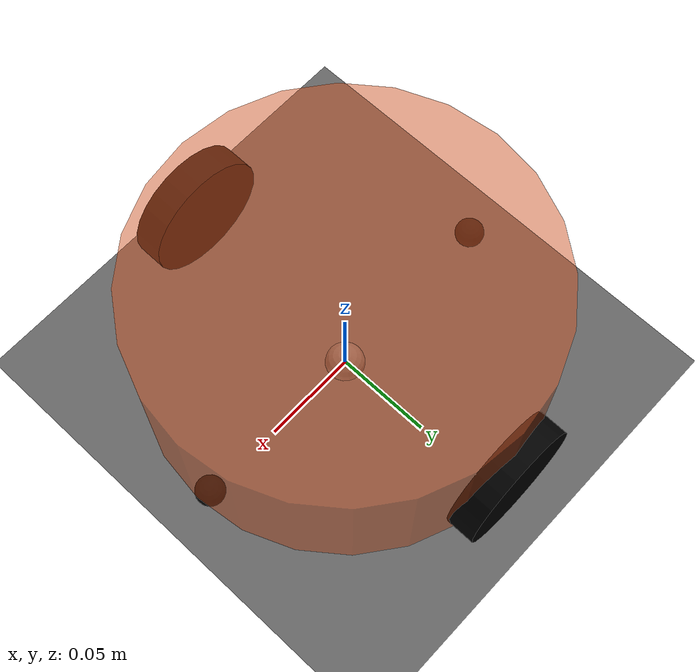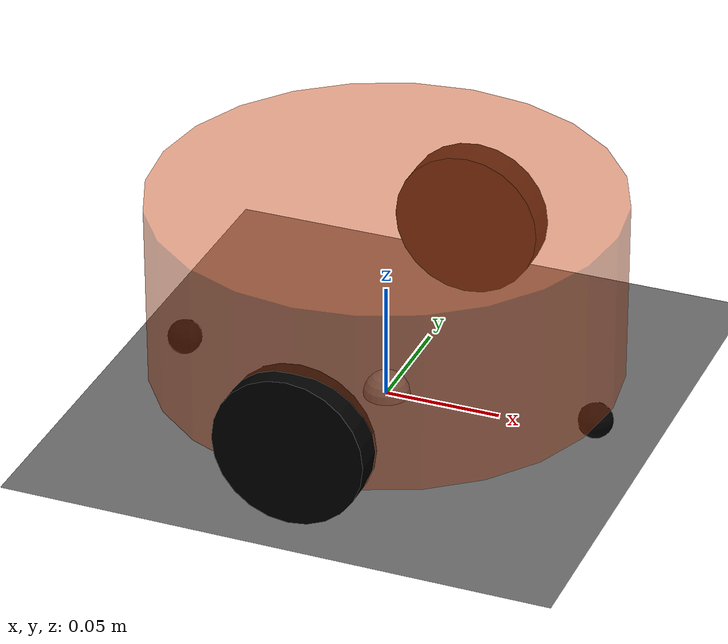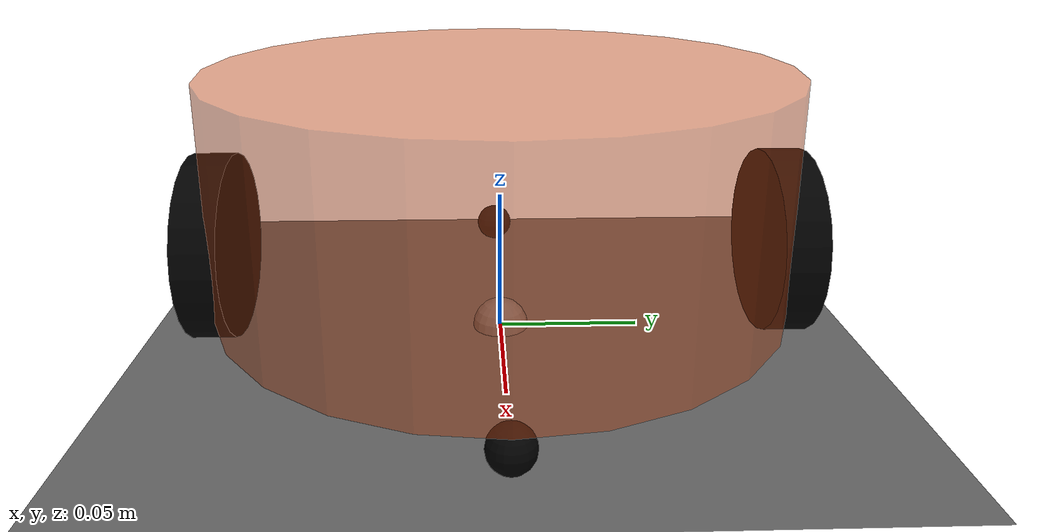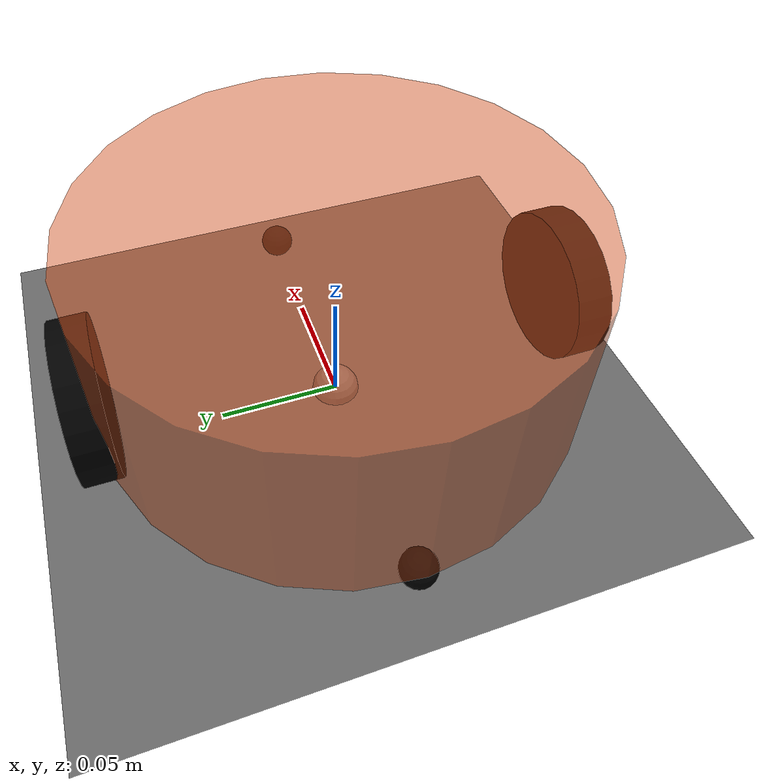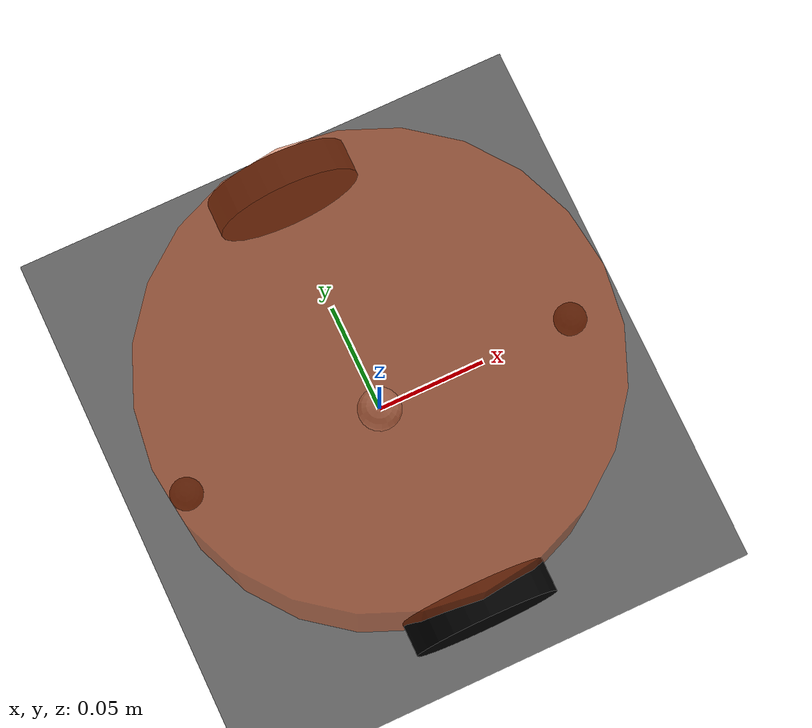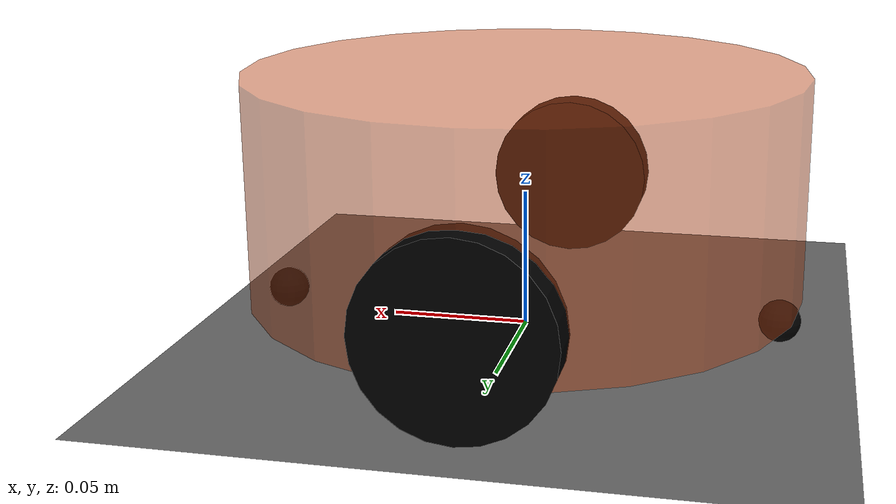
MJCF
<mujoco model="mycar">
  <option iterations="50" timestep="0.001" solver="PGS" gravity="0 0 -9.81" />

  <compiler angle="radian" meshdir="meshes" eulerseq="zyx" autolimits="true" />

  <default>
    <joint limited="false" damping="0.01" armature="0.01" frictionloss="0.01" />
    <geom condim="4" contype="1" conaffinity="15" friction="0.9 0.2 0.2" solref="0.001 2" />
    <motor ctrllimited="true" />
    <equality solref="0.001 2" />
    <default class="visualgeom">
      <geom material="visualgeom" condim="1" contype="0" conaffinity="0" />
    </default>
  </default>

  <worldbody>
    <light directional="true" diffuse="0.4 0.4 0.4" specular="0.1 0.1 0.1" pos="0 0 5.0" dir="0 0 -1" castshadow="false" />
    <light directional="true" diffuse="0.6 0.6 0.6" specular="0.2 0.2 0.2" pos="0 0 4" dir="0 0 -1" />
    <geom name="ground" type="plane" pos="0 0 0" size="100 100 0.001" quat="1 0 0 0" material="matplane" condim="3" conaffinity="15" />
    <camera name="fixed" pos="0 -3.0 0.5" xyaxes="1 0 0 0 0 1" />
    <camera name="track" mode="trackcom" pos="0 -3.0 0.5" xyaxes="1 0 0 0 0 1" />
    <body name="root" pos="0 0 0">
      <freejoint name="root" />
      <site name="imu" size="0.01" pos="0 0 0" />
      <!-- base_footprint的碰撞体（球体） -->
      <geom type="sphere" size="0.001" contype="1" conaffinity="0" density="0" group="1" class="visualgeom" />
      <!-- 底盘的可视化几何（圆柱体） -->
      <geom size="0.1 0.04" pos="0 0 0.055" type="cylinder" rgba="0.8 0.3 0.1 0.5" contype="1" conaffinity="0" density="0" group="1" class="visualgeom" />
      <!-- 底盘的碰撞体（圆柱体） -->
      <geom type="cylinder" size="0.1 0.04" rgba="0.8 0.3 0.1 0.5" pos="0 0 0.055" />

      <!-- 左驱动轮 -->
      <body name="left_wheel" pos="0 0.1 0.0325">
        <inertial pos="0 0 0" quat="0.707107 0 0 0.707107" mass="0.2" diaginertia="0.000106 0.0001056 0.0001056" />
        <joint name="left_wheel2base_link" pos="0 0 0" axis="0 1 0" limited="false" />
        <!-- 左轮可视化几何（圆柱体） -->
        <geom size="0.0325 0.0075" quat="0.707212 0.707002 0 0" type="cylinder" rgba="0 0 0 1" contype="1" conaffinity="0" density="0" group="1" class="visualgeom" />
        <!-- 左轮碰撞体（已集成到可视化几何中，删除冗余标签） -->
      </body>

      <!-- 右驱动轮 -->
      <body name="right_wheel" pos="0 -0.1 0.0325">
        <inertial pos="0 0 0" quat="0.707107 0 0 0.707107" mass="0.2" diaginertia="0.000106 0.0001056 0.0001056" />
       <joint name="right_wheel2base_link" pos="0 0 0" axis="0 1 0" limited="false" />
        <!-- 右轮可视化几何（圆柱体） -->
        <geom size="0.0325 0.0075" quat="0.707212 0.707002 0 0" type="cylinder" rgba="0 0 0 1" contype="1" conaffinity="0" density="0" group="1" class="visualgeom" />
        <!-- 右轮碰撞体（已集成到可视化几何中，删除冗余标签） -->
      </body>

      <!-- 前万向轮 -->
      <body name="front_wheel" pos="0.0925 0 0.0075">
        <inertial pos="0 0 0" mass="0.1" diaginertia="2.25e-07 2.25e-07 2.25e-07" />
        <joint name="front_wheel2base_link" pos="0 0 0" axis="0.57735 0.57735 0.57735" limited="false" />
        <!-- 前轮可视化几何（球体） -->
        <geom size="0.0075" rgba="0 0 0 1" contype="1" conaffinity="0" density="0" group="1" class="visualgeom" />
        <!-- 前轮碰撞体（球体） -->
        <geom type="sphere" size="0.0075" rgba="0 0 0 1" />
      </body>

      <!-- 后万向轮 -->
      <body name="back_wheel" pos="-0.0925 0 0.0075">
        <inertial pos="0 0 0" mass="0.1" diaginertia="2.25e-07 2.25e-07 2.25e-07" />
       <joint name="back_wheel2base_link" pos="0 0 0" axis="0.57735 0.57735 0.57735" limited="false" />
        <!-- 后轮可视化几何（球体） -->
        <geom size="0.0075" rgba="0 0 0 1" contype="1" conaffinity="0" density="0" group="1" class="visualgeom" />
        <!-- 后轮碰撞体（球体） -->
        <geom type="sphere" size="0.0075" rgba="0 0 0 1" />
      </body>
    </body>
  </worldbody>

  <asset>
    <texture name="texplane" type="2d" builtin="checker" rgb1=".0 .0 .0" rgb2=".8 .8 .8" width="100" height="100" />
    <material name="matplane" reflectance="0." texture="texplane" texrepeat="1 1" texuniform="true" />
    <material name="visualgeom" rgba="0.5 0.9 0.2 1" />
  </asset>

  <actuator>
    <motor name="left_wheel2base_link" joint="left_wheel2base_link" ctrllimited="true" ctrlrange="-5 5" gear="100" />
    <motor name="right_wheel2base_link" joint="right_wheel2base_link" ctrllimited="true" ctrlrange="-5 5" gear="100" />
  </actuator>

  <sensor>
    <actuatorpos name="left_wheel2base_link_p" actuator="left_wheel2base_link" />
    <actuatorvel name="left_wheel2base_link_v" actuator="left_wheel2base_link" />
    <actuatorfrc name="left_wheel2base_link_f" actuator="left_wheel2base_link" noise="0.001" />
    <actuatorpos name="right_wheel2base_link_p" actuator="right_wheel2base_link" />
    <actuatorvel name="right_wheel2base_link_v" actuator="right_wheel2base_link" />
    <actuatorfrc name="right_wheel2base_link_f" actuator="right_wheel2base_link" noise="0.001" />
    <framequat name="orientation" objtype="site" noise="0.001" objname="imu" />
    <gyro name="angular-velocity" site="imu" noise="0.005" cutoff="34.9" />
  </sensor>
</mujoco>
